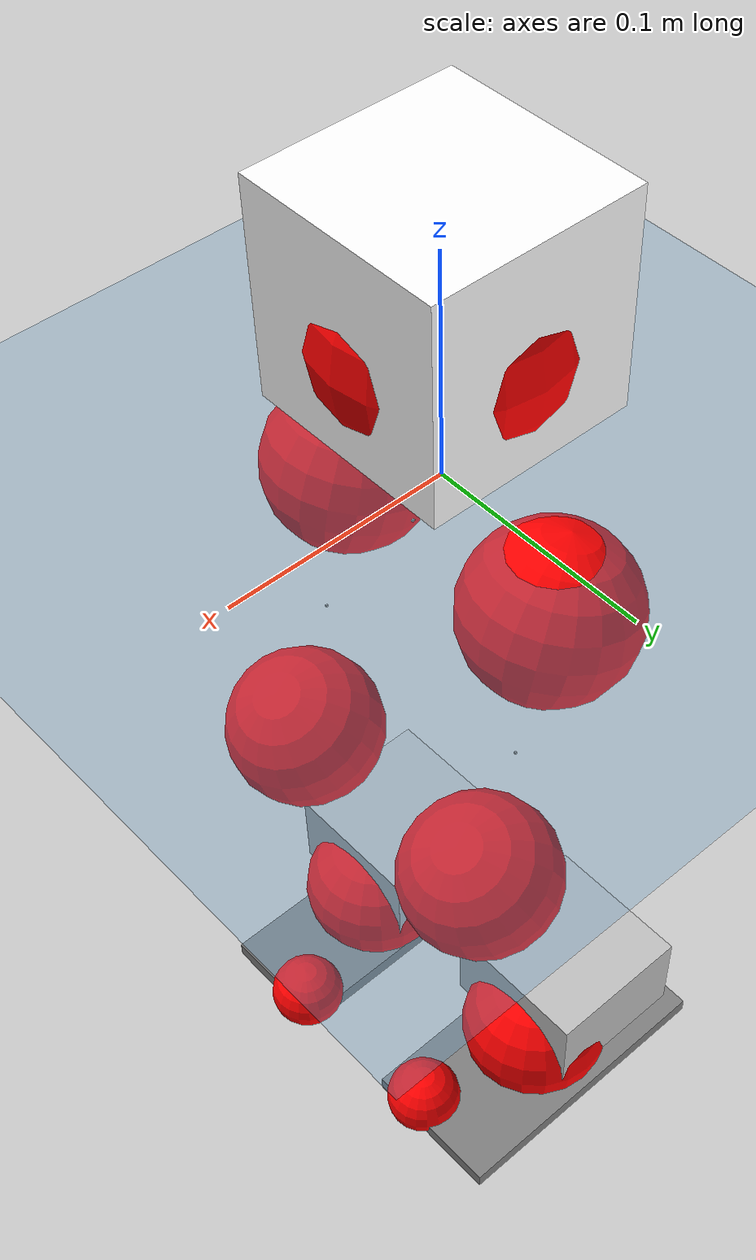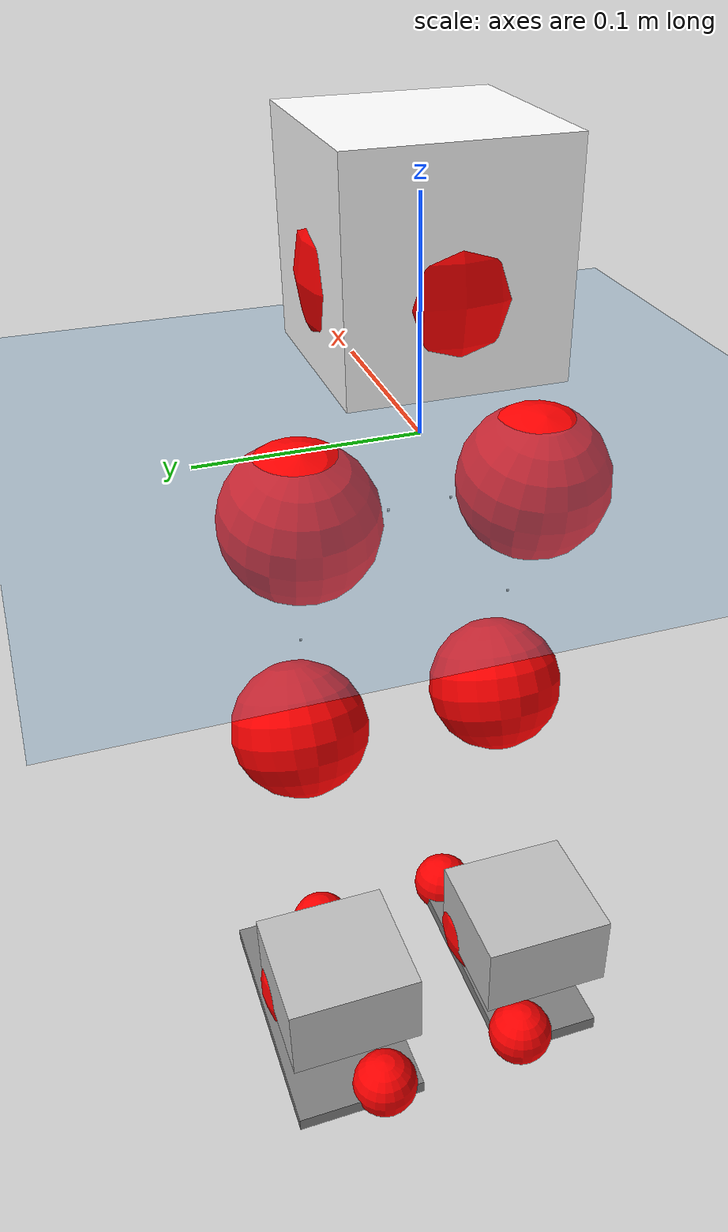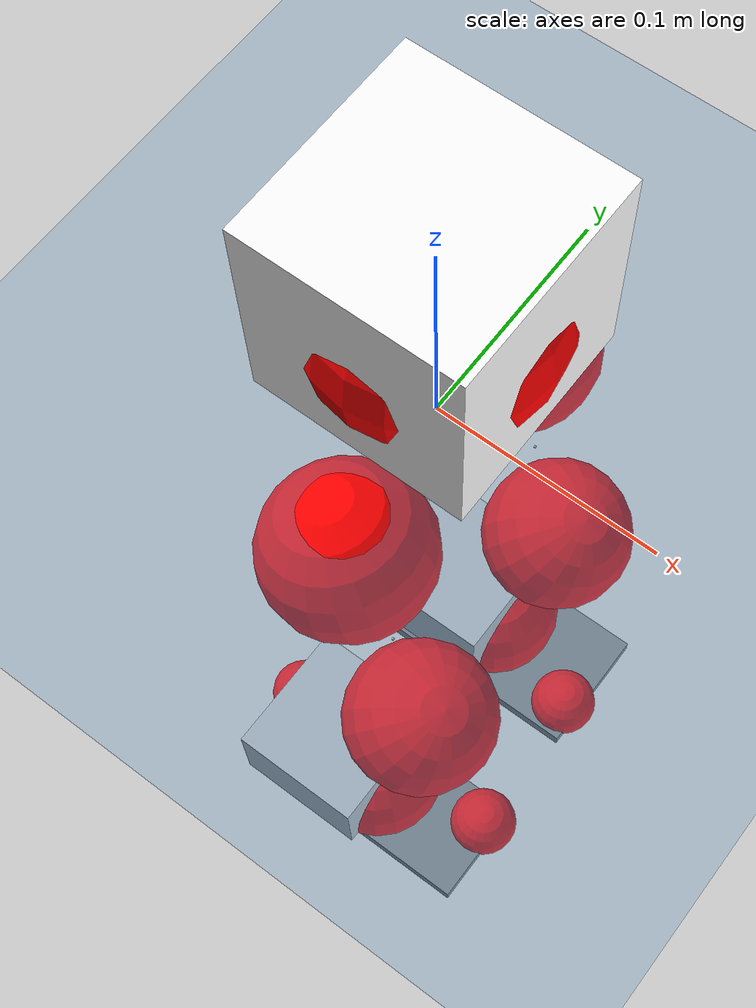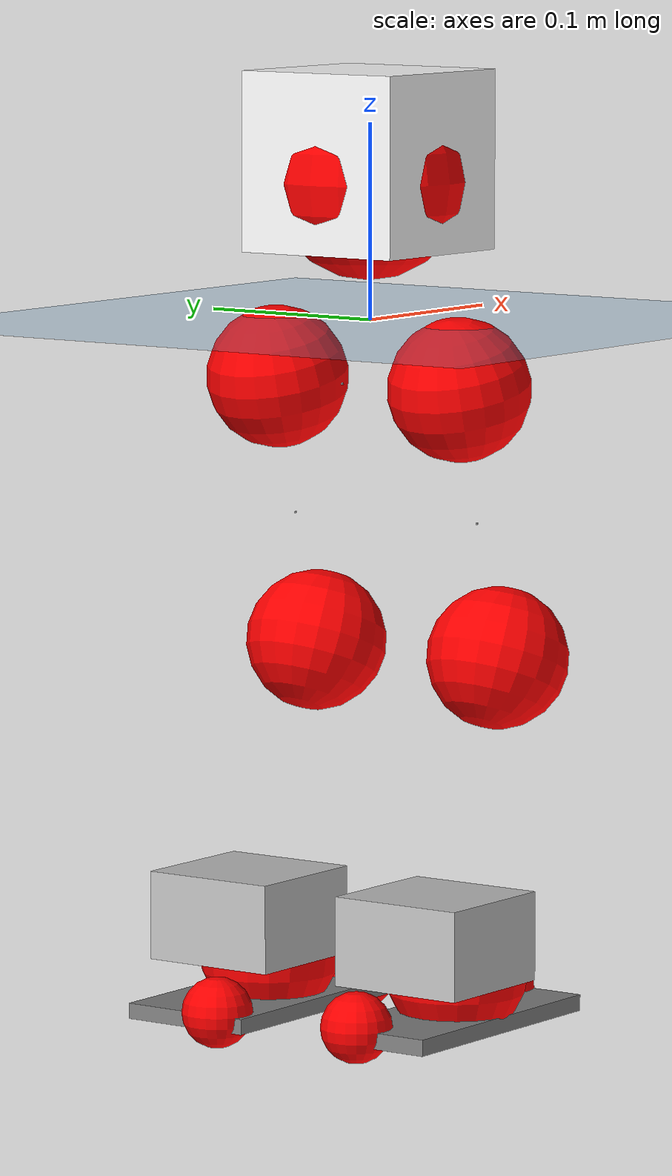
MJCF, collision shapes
<mujoco model="pi_12dof_release_v1">
  <compiler angle="radian" assetdir="assets" balanceinertia="true" inertiafromgeom="false"/>

  <option timestep="0.005" density="1.2" viscosity="2e-05"/>

  <size nkey="1"/>

  <visual>
    <quality shadowsize="8192"/>
    <map shadowclip="0.5"/>
  </visual>

  <default>
    <default class="/">
      <joint armature="0.01" damping="0.01" frictionloss="0.01"/>
      <geom contype="0" conaffinity="0" group="1" solref="-1000 -80"/>
      <site size="0.01 0.005 0.005" group="5"/>
      <general forcelimited="true" biastype="affine" gainprm="20" biasprm="0 -20 -0.5"/>
      <default class="foot">
        <geom size="0.0845 0.036 0.005" type="box" condim="6" group="4" priority="1" friction="0.9 0.2 0.2" solimp="0.015 1 0.005"/>
      </default>
      <default class="reward_collision_sphere">
        <geom group="5" rgba="1 0 0 1"/>
      </default>
    </default>
  </default>

  <asset>
    <texture type="skybox" colorspace="auto" name="//unnamed_texture_0" builtin="gradient" rgb1="0.95 0.95 0.95" rgb2="0.95 0.95 0.95" width="100" height="600"/>
    <texture type="2d" colorspace="auto" name="texplane" builtin="checker" rgb1="0.345 0.575 0.748" rgb2="0.345 0.575 0.748" markrgb="1 1 1" width="512" height="512"/>
    <material name="MatPlane" class="/" texture="texplane" texuniform="true" texrepeat="2 2" specular="0.9"/>
    <mesh name="baselink_1" class="/" file="baselink_1.STL"/>
    <mesh name="r_hip_pitch_link" class="/" file="r_hip_pitch_link.STL"/>
    <mesh name="r_hip_roll_link" class="/" file="r_hip_roll_link.STL"/>
    <mesh name="r_thigh_link" class="/" file="r_thigh_link.STL"/>
    <mesh name="r_calf_link" class="/" file="r_calf_link.STL"/>
    <mesh name="r_ankle_pitch_link" class="/" file="r_ankle_pitch_link.STL"/>
    <mesh name="r_ankle_roll_link" class="/" file="r_ankle_roll_link.STL"/>
    <mesh name="l_hip_pitch_link" class="/" file="l_hip_pitch_link.STL"/>
    <mesh name="l_hip_roll_link" class="/" file="l_hip_roll_link.STL"/>
    <mesh name="l_thigh_link" class="/" file="l_thigh_link.STL"/>
    <mesh name="l_calf_link" class="/" file="l_calf_link.STL"/>
    <mesh name="l_ankle_pitch_link" class="/" file="l_ankle_pitch_link.STL"/>
    <mesh name="l_ankle_roll_link" class="/" file="l_ankle_roll_link.STL"/>
  </asset>

  <worldbody>
    <geom name="floor" class="/" size="100 100 0.125" type="plane" group="0" material="MatPlane"/>
    <light name="toplight_shadow" class="/" pos="0 0 5" dir="0.0990148 0.0990148 -0.990148" type="directional" ambient="0.04 0.04 0.04" diffuse="0.55 0.55 0.55" specular="0.12 0.12 0.12"/>
    <light name="toplight_fill" class="/" pos="0 0 5" dir="0.0990148 0.0990148 -0.990148" type="directional" castshadow="false" ambient="0.04 0.04 0.04" diffuse="0.3 0.3 0.3" specular="0.08 0.08 0.08"/>
    <body name="trunk" pos="-0.00104925 0.000452405 -0.00188891" quat="0.999999 0.000401062 0.00106547 -9.87227e-05">
      <inertial pos="0.0005807 0.00192388 0.0416547" quat="0.689977 0.00860594 0.018972 0.723532" mass="1.64351" diaginertia="0.00741105 0.0025999 0.00509339"/>
      <joint name="//unnamed_joint_0" type="free"/>
      <geom name="//unnamed_geom_1" class="/" type="mesh" density="0" rgba="1 1 1 1" mesh="baselink_1"/>
      <geom name="//unnamed_geom_2" class="/" size="0.045897 0.045897 0.045897" pos="0 0 0.0830493" type="box" rgba="1 1 1 1"/>
      <geom name="//unnamed_geom_3" class="reward_collision_sphere" size="0.0504867" pos="0 0 0.0726681"/>
      <site name="imu" class="/" pos="-0.00307295 0.0127624 -0.0140448" size="0.00917941"/>
      <camera name="track" class="/" pos="0 -1.55173 0" quat="0.707107 0.707107 0 0" mode="trackcom"/>
      <camera name="ego_camera" class="/" pos="0.070488 0 0.186861" quat="-0.5 -0.5 0.5 0.5"/>
      <body name="r_hip_pitch_link" pos="0.00231235 -0.015926 -0.0325903" quat="0.992194 -8.66114e-06 -0.124703 4.38593e-07">
        <inertial pos="-0.00160656 -0.0428137 -0.00213088" quat="-0.0278998 0.706362 -0.0237876 0.706901" mass="0.278142" diaginertia="7.98317e-05 2.65669e-05 9.68503e-05"/>
        <joint name="r_hip_pitch_joint" class="/" pos="0 0 0" axis="-9.67674e-06 -1 0.000220263" range="-1.75676 1.2455" armature="0.00955465" damping="0.00567401" frictionloss="0.0087846"/>
        <geom name="//unnamed_geom_4" class="/" type="mesh" density="0" rgba="0.75294 0.75294 0.75294 1" mesh="r_hip_pitch_link"/>
        <geom name="//unnamed_geom_5" class="/" size="0.00045897 0.00045897 0.00045897" type="box" rgba="0.75294 0.75294 0.75294 1"/>
        <body name="r_hip_roll_link" pos="-0.00132473 -0.04035 0.00248022" quat="1 0.000127552 0.00013041 6.08278e-05">
          <inertial pos="-0.00339075 -0.000427584 -0.0630235" quat="0.706936 -0.0811223 -0.0798715 0.698055" mass="0.289987" diaginertia="0.000235663 7.5716e-05 0.000144621"/>
          <joint name="r_hip_roll_joint" class="/" pos="0 0 0" axis="-0.999901 0.00470142 0.0132897" range="-0.12487 0.491047" armature="0.00840717" damping="0.0105946" frictionloss="0.0103878"/>
          <geom name="//unnamed_geom_6" class="/" type="mesh" density="0" rgba="0.75294 0.75294 0.75294 1" mesh="r_hip_roll_link"/>
          <geom name="//unnamed_geom_7" class="/" size="0.00045897 0.00045897 0.00045897" type="box" rgba="0.75294 0.75294 0.75294 1"/>
          <geom name="//unnamed_geom_8" class="reward_collision_sphere" size="0.0367176"/>
          <body name="r_thigh_link" pos="0.000551834 0.00156247 -0.0722974" quat="1 7.86858e-05 -5.05686e-05 -0.000152963">
            <inertial pos="-0.00104813 -0.00136649 -0.0497108" quat="0.737353 0.675504 -0.000920454 0.00213544" mass="0.0879866" diaginertia="8.91362e-05 2.63326e-05 6.95794e-05"/>
            <joint name="r_thigh_joint" class="/" pos="0 0 0" axis="0.00392268 -0.00195186 -0.99999" stiffness="0.00755381" range="-0.345897 0.64602" armature="0.00849721" damping="0.0190259" frictionloss="0.00955141"/>
            <geom name="//unnamed_geom_9" class="/" type="mesh" density="0" rgba="0.75294 0.75294 0.75294 1" mesh="r_thigh_link"/>
            <geom name="//unnamed_geom_10" class="/" size="0.00045897 0.00045897 0.00045897" type="box" rgba="0.75294 0.75294 0.75294 1"/>
            <body name="r_calf_link" pos="-0.00234235 -0.00245313 -0.072192" quat="0.947865 -0.000502037 0.318671 -0.000146849">
              <inertial pos="-0.00225884 -0.000535763 -0.0718852" quat="0.999958 -0.00748838 0.00500204 -0.00137942" mass="0.638249" diaginertia="0.00253718 0.000973058 0.000206135"/>
              <joint name="r_calf_joint" class="/" pos="0 0 0" axis="0.00248807 -0.999997 0.00053347" range="-1.65901 0.694628" armature="0.0092002" damping="0.00794087" frictionloss="0.00872449"/>
              <geom name="//unnamed_geom_11" class="/" type="mesh" density="0" rgba="0.75294 0.75294 0.75294 1" mesh="r_calf_link"/>
              <geom name="//unnamed_geom_12" class="/" size="0.00045897 0.00045897 0.00045897" type="box" rgba="0.75294 0.75294 0.75294 1"/>
              <geom name="//unnamed_geom_13" class="reward_collision_sphere" size="0.0367176"/>
              <body name="r_ankle_pitch_link" pos="0.00162099 -0.000937262 -0.148191" quat="0.980169 -0.000537546 -0.19816 0.000678073">
                <inertial pos="0.00245734 0.00327097 -0.00124383" quat="0.00142349 0.707601 -0.00358828 0.706602" mass="0.141419" diaginertia="0.000225743 6.0434e-05 0.00014826"/>
                <joint name="r_ankle_pitch_joint" class="/" pos="0 0 0" axis="-0.0124451 -0.999921 0.00182629" range="-1.34629 0.497033" armature="0.00859051" damping="0.0165063" frictionloss="0.0087698"/>
                <geom name="//unnamed_geom_14" class="/" type="mesh" density="0" rgba="0.75294 0.75294 0.75294 1" mesh="r_ankle_pitch_link"/>
                <geom name="//unnamed_geom_15" class="/" size="0.0357997 0.0367176 0.0229485" type="box" rgba="0.75294 0.75294 0.75294 1"/>
                <body name="r_ankle_roll_link" pos="0.0701654 0.00303088 0.000549787" quat="1 0.000156002 3.90494e-05 0.000150094">
                  <inertial pos="-0.0229356 -0.00227478 -0.0124144" quat="0.556135 0.437398 0.433117 0.558396" mass="0.393662" diaginertia="0.000812674 0.000290466 0.00032027"/>
                  <joint name="r_ankle_roll_joint" class="/" pos="0 0 0" axis="-0.999995 0.000286152 -0.003013" stiffness="0.00248225" range="-0.179977 0.203357" armature="0.0080158" damping="0" frictionloss="0.00815028"/>
                  <geom name="//unnamed_geom_16" class="/" type="mesh" density="0" rgba="0.75294 0.75294 0.75294 1" mesh="r_ankle_roll_link"/>
                  <geom name="//unnamed_geom_17" class="/" type="mesh" rgba="0.75294 0.75294 0.75294 1" mesh="r_ankle_roll_link"/>
                  <geom name="right_foot" class="foot" size="0.0706974 0.0293439 0.00421093" pos="-0.0479319 0 -0.0456771"/>
                  <geom name="//unnamed_geom_19" class="reward_collision_sphere" size="0.0367176" pos="-0.046992 0 -0.0207623"/>
                  <geom name="//unnamed_geom_20" class="reward_collision_sphere" size="0.0183588" pos="0.0140976 0.0155173 -0.0415246"/>
                  <geom name="//unnamed_geom_21" class="reward_collision_sphere" size="0.0183588" pos="-0.112781 0.0155173 -0.0415246"/>
                  <site name="right_foot" class="foot" pos="-0.0479319 0 -0.0456771" size="0.00917941"/>
                </body>
              </body>
            </body>
          </body>
        </body>
      </body>
      <body name="l_hip_pitch_link" pos="-0.00132894 0.0154061 -0.0317024" quat="0.992219 -0.000200595 -0.124501 0.000100267">
        <inertial pos="-0.000757924 0.0394029 -0.00160139" quat="-0.0359122 0.708808 0.0343781 0.703647" mass="0.295736" diaginertia="8.87477e-05 2.91506e-05 0.000113439"/>
        <joint name="l_hip_pitch_joint" class="/" pos="0 0 0" axis="0.00512629 0.999901 0.0131065" range="-1.28603 1.70787" armature="0.00914929" damping="0" frictionloss="0.0102482"/>
        <geom name="//unnamed_geom_22" class="/" type="mesh" density="0" rgba="0.75294 0.75294 0.75294 1" mesh="l_hip_pitch_link"/>
        <geom name="//unnamed_geom_23" class="/" size="0.00045897 0.00045897 0.00045897" type="box" rgba="0.75294 0.75294 0.75294 1"/>
        <body name="l_hip_roll_link" pos="-6.16137e-05 0.0407889 0.00165339" quat="0.999999 -0.000565902 0.000207271 0.0011952">
          <inertial pos="-4.35369e-05 -0.00289433 -0.0649339" quat="0.699614 -0.075001 -0.0779307 0.706287" mass="0.307263" diaginertia="0.000255342 7.83355e-05 0.000162953"/>
          <joint name="l_hip_roll_joint" class="/" pos="0 0 0" axis="-0.999999 0.000715934 0.00073325" stiffness="0.00184702" range="-0.501445 0.063332" armature="0.00800583" damping="0.0180313" frictionloss="0.00912625"/>
          <geom name="//unnamed_geom_24" class="/" type="mesh" density="0" rgba="0.75294 0.75294 0.75294 1" mesh="l_hip_roll_link"/>
          <geom name="//unnamed_geom_25" class="/" size="0.00045897 0.00045897 0.00045897" type="box" rgba="0.75294 0.75294 0.75294 1"/>
          <geom name="//unnamed_geom_26" class="reward_collision_sphere" size="0.0367176"/>
          <body name="l_thigh_link" pos="-0.00305985 -0.000164639 -0.0736184" quat="0.999999 -0.00047949 -0.00116611 0.000527516">
            <inertial pos="-0.00155624 0.00107334 -0.0512046" quat="0.676535 0.736312 -0.0111739 0.00452143" mass="0.0835474" diaginertia="8.80992e-05 2.49515e-05 6.88085e-05"/>
            <joint name="l_thigh_joint" class="/" pos="0 0 0" axis="-0.000770443 -0.000643835 -0.999999" stiffness="0.00276253" range="-0.594283 0.322069" armature="0.00912357" damping="0" frictionloss="0.00996613"/>
            <geom name="//unnamed_geom_27" class="/" type="mesh" density="0" rgba="0.75294 0.75294 0.75294 1" mesh="l_thigh_link"/>
            <geom name="//unnamed_geom_28" class="/" size="0.00045897 0.00045897 0.00045897" type="box" rgba="0.75294 0.75294 0.75294 1"/>
            <body name="l_calf_link" pos="0.000265319 -0.000201902 -0.0708733" quat="0.947731 0.00028074 0.31907 0.000140741">
              <inertial pos="-0.00261324 -0.000530007 -0.071981" quat="0.999949 -0.00719569 0.00572687 0.00421998" mass="0.633778" diaginertia="0.00271477 0.0010095 0.000221697"/>
              <joint name="l_calf_joint" class="/" pos="0 0 0" axis="-0.00559634 0.999901 0.0129145" range="-0.702034 1.69927" armature="0.00920803" damping="0" frictionloss="0.0104339"/>
              <geom name="//unnamed_geom_29" class="/" type="mesh" density="0" rgba="0.75294 0.75294 0.75294 1" mesh="l_calf_link"/>
              <geom name="//unnamed_geom_30" class="/" size="0.00045897 0.00045897 0.00045897" type="box" rgba="0.75294 0.75294 0.75294 1"/>
              <geom name="//unnamed_geom_31" class="reward_collision_sphere" size="0.0367176"/>
              <body name="l_ankle_pitch_link" pos="0.000347237 0.00191191 -0.147355" quat="0.980066 0.000504166 -0.198673 0.000122715">
                <inertial pos="0.00671049 -0.00346568 -0.0024527" quat="-0.0132485 0.702036 0.00661988 0.711987" mass="0.132225" diaginertia="0.000231134 6.14348e-05 0.000142957"/>
                <joint name="l_ankle_pitch_joint" class="/" pos="0 0 0" axis="-0.000214375 1 -0.000621652" stiffness="0.0112619" range="-0.563014 1.28113" armature="0.00827561" damping="0.00308751" frictionloss="0.00789479"/>
                <geom name="//unnamed_geom_32" class="/" type="mesh" density="0" rgba="0.75294 0.75294 0.75294 1" mesh="l_ankle_pitch_link"/>
                <geom name="//unnamed_geom_33" class="/" size="0.0357997 0.0367176 0.0229485" type="box" rgba="0.75294 0.75294 0.75294 1"/>
                <body name="l_ankle_roll_link" pos="0.0687835 0.00326353 -0.00237521" quat="1 0.000531506 1.46035e-05 0.000405192">
                  <inertial pos="-0.022425 -0.000224965 -0.0151926" quat="0.559339 0.440212 0.434413 0.551941" mass="0.417385" diaginertia="0.000866338 0.000308176 0.000342775"/>
                  <joint name="l_ankle_roll_joint" class="/" pos="0 0 0" axis="-1 -8.78319e-05 -0.000196022" range="-0.167322 0.124344" armature="0.00882788" damping="0" frictionloss="0.00820183"/>
                  <geom name="//unnamed_geom_34" class="/" type="mesh" density="0" rgba="0.75294 0.75294 0.75294 1" mesh="l_ankle_roll_link"/>
                  <geom name="//unnamed_geom_35" class="/" type="mesh" rgba="0.75294 0.75294 0.75294 1" mesh="l_ankle_roll_link"/>
                  <geom name="left_foot" class="foot" size="0.0720453 0.0358461 0.00403866" pos="-0.0479319 0 -0.0456771"/>
                  <geom name="//unnamed_geom_37" class="reward_collision_sphere" size="0.0367176" pos="-0.046992 0 -0.0207623"/>
                  <geom name="//unnamed_geom_38" class="reward_collision_sphere" size="0.0183588" pos="0.0140976 -0.0155173 -0.0415246"/>
                  <geom name="//unnamed_geom_39" class="reward_collision_sphere" size="0.0183588" pos="-0.112781 -0.0155173 -0.0415246"/>
                  <site name="left_foot" class="foot" pos="-0.0479319 0 -0.0456771" size="0.00917941"/>
                </body>
              </body>
            </body>
          </body>
        </body>
      </body>
    </body>
  </worldbody>

  <contact>
    <pair class="/" geom1="floor" geom2="right_foot" name="//unnamed_contact_1"/>
    <pair class="/" geom1="floor" geom2="left_foot" name="//unnamed_contact_0"/>
  </contact>

  <actuator>
    <general name="r_hip_pitch_joint" class="/" joint="r_hip_pitch_joint" forcerange="-21.2038 21.2038" gainprm="17.7702" biasprm="0 -17.7702 -0.432265"/>
    <general name="r_hip_roll_joint" class="/" joint="r_hip_roll_joint" forcerange="-18.1326 18.1326" gainprm="17.7702" biasprm="0 -17.7702 -0.432265"/>
    <general name="r_thigh_joint" class="/" joint="r_thigh_joint" forcerange="-18.9825 18.9825" gainprm="17.7702" biasprm="0 -17.7702 -0.432265"/>
    <general name="r_calf_joint" class="/" joint="r_calf_joint" forcerange="-20.2589 20.2589" gainprm="17.7702" biasprm="0 -17.7702 -0.432265"/>
    <general name="r_ankle_pitch_joint" class="/" joint="r_ankle_pitch_joint" forcerange="-17.9317 17.9317" gainprm="17.7702" biasprm="0 -17.7702 -0.432265"/>
    <general name="r_ankle_roll_joint" class="/" joint="r_ankle_roll_joint" forcerange="-18.0601 18.0601" gainprm="17.7702" biasprm="0 -17.7702 -0.432265"/>
    <general name="l_hip_pitch_joint" class="/" joint="l_hip_pitch_joint" forcerange="-18.9587 18.9587" gainprm="17.7702" biasprm="0 -17.7702 -0.432265"/>
    <general name="l_hip_roll_joint" class="/" joint="l_hip_roll_joint" forcerange="-18.7923 18.7923" gainprm="17.7702" biasprm="0 -17.7702 -0.432265"/>
    <general name="l_thigh_joint" class="/" joint="l_thigh_joint" forcerange="-21.0682 21.0682" gainprm="17.7702" biasprm="0 -17.7702 -0.432265"/>
    <general name="l_calf_joint" class="/" joint="l_calf_joint" forcerange="-19.8912 19.8912" gainprm="17.7702" biasprm="0 -17.7702 -0.432265"/>
    <general name="l_ankle_pitch_joint" class="/" joint="l_ankle_pitch_joint" forcerange="-20.9614 20.9614" gainprm="17.7702" biasprm="0 -17.7702 -0.432265"/>
    <general name="l_ankle_roll_joint" class="/" joint="l_ankle_roll_joint" forcerange="-18.8719 18.8719" gainprm="17.7702" biasprm="0 -17.7702 -0.432265"/>
  </actuator>

  <sensor>
    <gyro site="imu" name="imu_angular_velocity"/>
    <velocimeter site="imu" name="imu_linear_velocity"/>
    <framelinvel objtype="site" objname="left_foot" name="left_foot_global_linear_velocity"/>
    <framelinvel objtype="site" objname="right_foot" name="right_foot_global_linear_velocity"/>
  </sensor>

  <keyframe>
    <key name="home" qpos="0 0 0.291 1 0 0 0 0.4 0 0 -0.8 0.4 0 -0.4 0 0 0.8 -0.4 0"/>
  </keyframe>
</mujoco>
